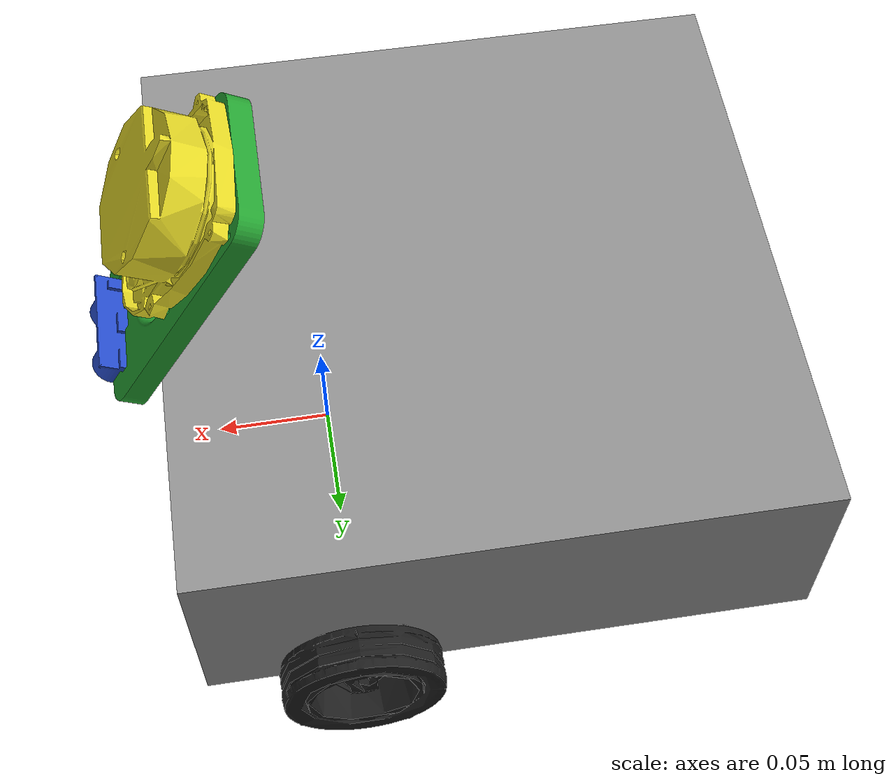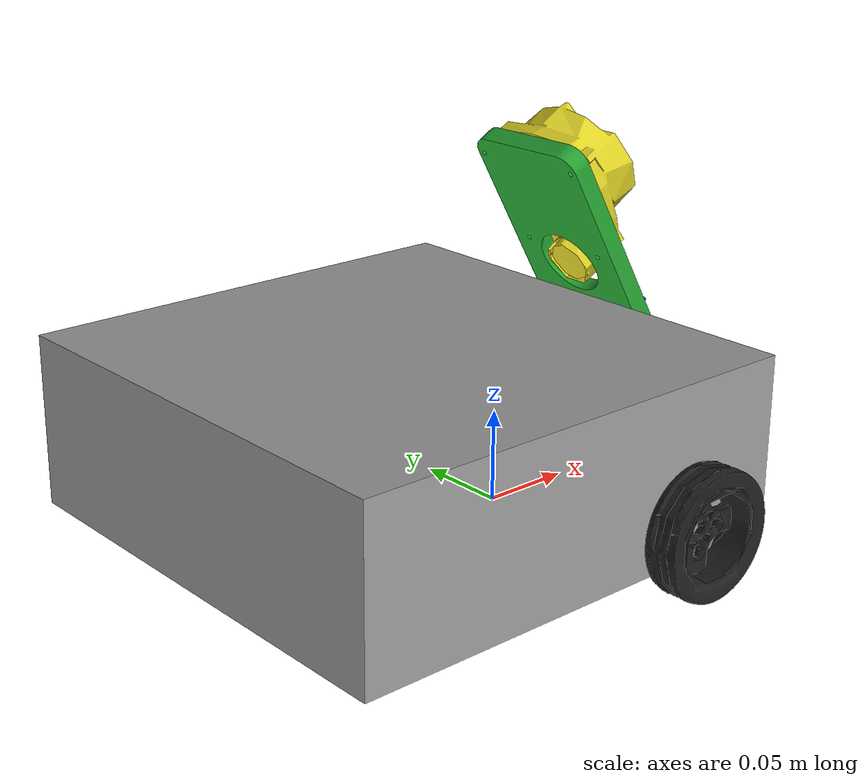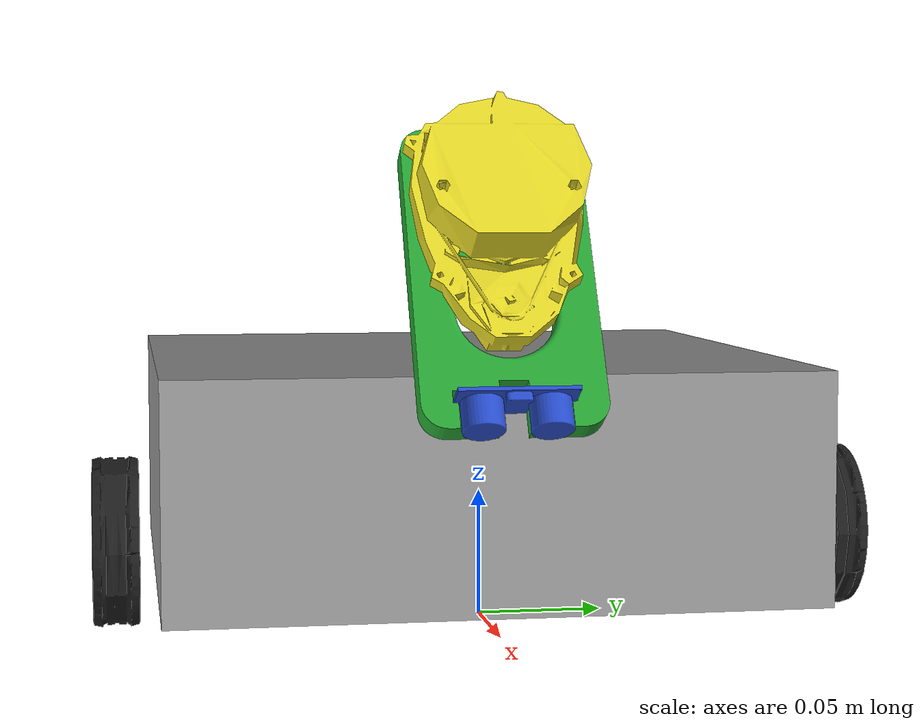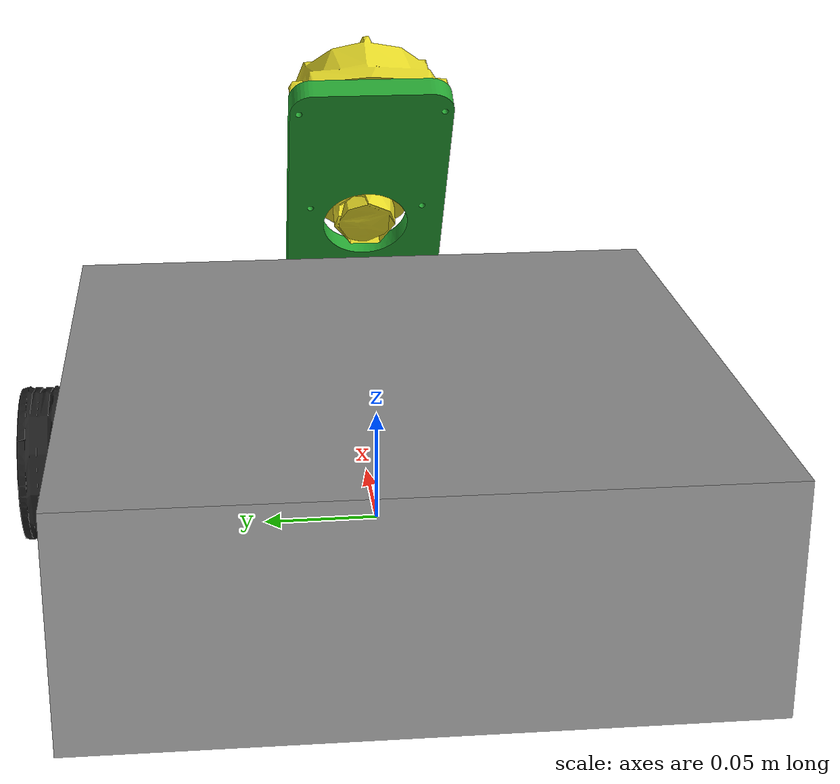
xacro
<?xml version="1.0" ?>
<robot name="turtlebot3_thesis" xmlns:xacro="http://ros.org/wiki/xacro">
  <xacro:include filename="$(find turtlebot3_description)/urdf/common_properties.xacro"/>
  <xacro:include filename="$(find turtlebot3_description)/urdf/turtlebot3_thesis.gazebo.xacro"/>

  <xacro:property name="r200_cam_rgb_px" value="0.000"/>
  <xacro:property name="r200_cam_rgb_py" value="0.00"/>
  <xacro:property name="r200_cam_rgb_pz" value="0.00"/>
  <xacro:property name="r200_cam_depth_offset" value="0.00"/>

  <link name="base_footprint"/>

  <joint name="base_joint" type="fixed">
    <parent link="base_footprint"/>
    <child link="base_link" />
    <origin xyz="0 0 0.010" rpy="0 0 0"/>
  </joint>

  <link name="base_link">
    <visual>
      <origin xyz="-0.064 0 0.0" rpy="0 0 0"/>
      <geometry>
        <mesh filename="package://turtlebot3_description/meshes/bases/tb3_base.stl" scale="1.0 1.0 1.0"/>
      </geometry>
      <material name="grey"/>
    </visual>

    <collision>
      <origin xyz="-0.064 0 0.047" rpy="0 0 0"/>
      <geometry>
        <box size="0.266 0.266 0.094"/>
      </geometry>
    </collision>

    <inertial>
      <origin xyz="0 0 0" rpy="0 0 0"/>
      <mass value="1.3729096e+00"/>
      <inertia ixx="8.7002718e-03" ixy="-4.7576583e-05" ixz="1.1160499e-04"
               iyy="8.6195418e-03" iyz="-3.5422299e-06"
               izz="1.4612727e-02" />
    </inertial>
  </link>

  <joint name="wheel_left_joint" type="continuous">
    <parent link="base_link"/>
    <child link="wheel_left_link"/>
    <origin xyz="0.0 0.144 0.023" rpy="-1.57 0 0"/>
    <axis xyz="0 0 1"/>
  </joint>

  <link name="wheel_left_link">
    <visual>
      <origin xyz="0 0 0" rpy="1.57 0 0"/>
      <geometry>
        <mesh filename="package://turtlebot3_description/meshes/wheels/left_tire.stl" scale="0.001 0.001 0.001"/>
      </geometry>
      <material name="dark"/>
    </visual>

    <collision>
      <origin xyz="0 0 0" rpy="0 0 0"/>
      <geometry>
        <cylinder length="0.018" radius="0.033"/>
      </geometry>
    </collision>

    <inertial>
      <origin xyz="0 0 0" />
      <mass value="2.8498940e-02" />
      <inertia ixx="1.1175580e-05" ixy="-4.2369783e-11" ixz="-5.9381719e-09"
               iyy="1.1192413e-05" iyz="-1.4400107e-11"
               izz="2.0712558e-05" />
      </inertial>
  </link>

  <joint name="wheel_right_joint" type="continuous">
    <parent link="base_link"/>
    <child link="wheel_right_link"/>
    <origin xyz="0.0 -0.144 0.023" rpy="-1.57 0 0"/>
    <axis xyz="0 0 1"/>
  </joint>

  <link name="wheel_right_link">
    <visual>
      <origin xyz="0 0 0" rpy="1.57 0 0"/>
      <geometry>
        <mesh filename="package://turtlebot3_description/meshes/wheels/right_tire.stl" scale="0.001 0.001 0.001"/>
      </geometry>
      <material name="dark"/>
    </visual>

    <collision>
      <origin xyz="0 0 0" rpy="0 0 0"/>
      <geometry>
        <cylinder length="0.018" radius="0.033"/>
      </geometry>
    </collision>

    <inertial>
      <origin xyz="0 0 0" />
      <mass value="2.8498940e-02" />
      <inertia ixx="1.1175580e-05" ixy="-4.2369783e-11" ixz="-5.9381719e-09"
               iyy="1.1192413e-05" iyz="-1.4400107e-11"
               izz="2.0712558e-05" />
      </inertial>
  </link>

  <joint name="caster_back_right_joint" type="fixed">
    <parent link="base_link"/>
    <child link="caster_back_right_link"/>
    <origin xyz="-0.177 -0.064 -0.004" rpy="-1.57 0 0"/>
  </joint>

  <link name="caster_back_right_link">
    <collision>
      <origin xyz="0 0.001 0" rpy="0 0 0"/>
      <geometry>
        <box size="0.030 0.009 0.020"/>
      </geometry>
    </collision>

    <inertial>
      <origin xyz="0 0 0" />
      <mass value="0.005" />
      <inertia ixx="0.001" ixy="0.0" ixz="0.0"
               iyy="0.001" iyz="0.0"
               izz="0.001" />
    </inertial>
  </link>

  <joint name="caster_back_left_joint" type="fixed">
    <parent link="base_link"/>
    <child link="caster_back_left_link"/>
    <origin xyz="-0.177 0.064 -0.004" rpy="-1.57 0 0"/>
  </joint>

  <link name="caster_back_left_link">
    <collision>
      <origin xyz="0 0.001 0" rpy="0 0 0"/>
      <geometry>
        <box size="0.030 0.009 0.020"/>
      </geometry>
    </collision>

    <inertial>
      <origin xyz="0 0 0" />
      <mass value="0.005" />
      <inertia ixx="0.001" ixy="0.0" ixz="0.0"
               iyy="0.001" iyz="0.0"
               izz="0.001" />
    </inertial>
  </link>

  <joint name="imu_joint" type="fixed">
    <parent link="base_link"/>
    <child link="imu_link"/>
    <origin xyz="0.0 0 0.068" rpy="0 0 0"/>
  </joint>

  <link name="imu_link"/>

  <joint name="sensor_base_joint" type="fixed">
    <origin xyz="0.039 0 0.135" rpy="0 1.047 0"/>
    <parent link="base_link"/>
    <child link="sensor_base_link"/>
  </joint>

  <link name="sensor_base_link">
    <visual>
     <origin xyz="0 0 0" rpy="0 0 0"/>
      <geometry>
       <mesh filename="package://turtlebot3_description/meshes/bases/sensor_base.stl" />
      </geometry>
    </visual>
  </link>

  <joint name="sensor_imu_joint" type="fixed">
    <origin xyz="0 0 0" rpy="0 0 0"/>
    <parent link="sensor_base_link"/>
    <child link="sensor_imu_link"/>
  </joint>

  <link name="sensor_imu_link"/>

  <joint name="scan_joint" type="fixed">
    <parent link="sensor_base_link"/>
    <child link="base_scan"/>
    <origin xyz="-0.018 0 0.029" rpy="0 0 0"/>
  </joint>

  <link name="base_scan">
    <visual>
      <origin xyz="0 0 0" rpy="0 0 0"/>
      <geometry>
        <mesh filename="package://turtlebot3_description/meshes/sensors/lds.stl" scale="0.001 0.001 0.001"/>
      </geometry>
      <material name="dark"/>
    </visual>

    <collision>
      <origin xyz="0.015 0 -0.0065" rpy="0 0 0"/>
      <geometry>
        <cylinder length="0.0315" radius="0.055"/>
      </geometry>
    </collision>
  </link>

  <joint name="sonar_joint" type="fixed">
    <origin xyz="0.064 0 0.01" rpy="0 0 0"/>
    <parent link="sensor_base_link"/>
    <child link="sonar_link"/>
  </joint>

  <link name="sonar_link">
    <visual>
     <origin xyz="0 0 0" rpy="1.57 0 1.57"/>
      <geometry>
       <mesh filename="package://turtlebot3_description/meshes/sensors/hc-sr04.stl" />
      </geometry>
      <material name="blue"/>
    </visual>
  </link>

</robot>
